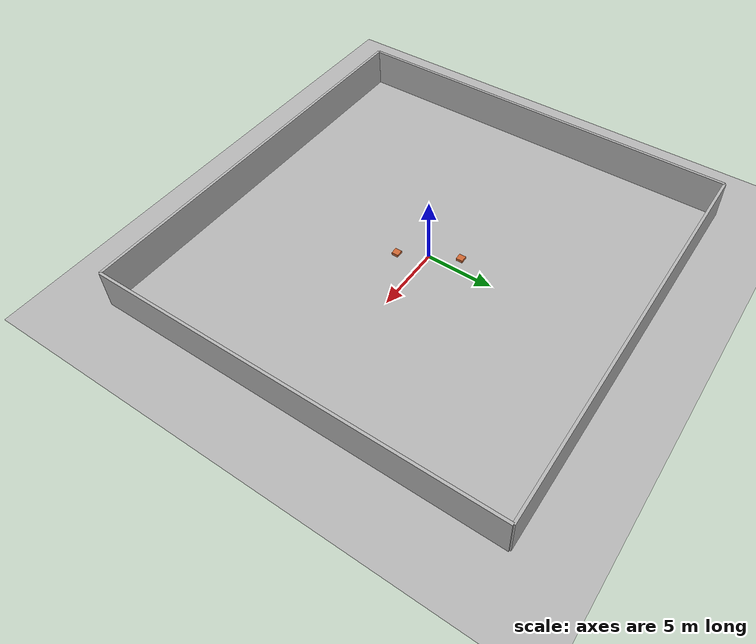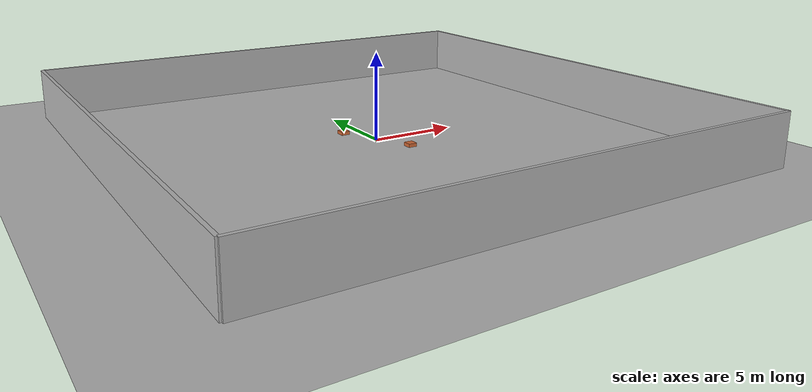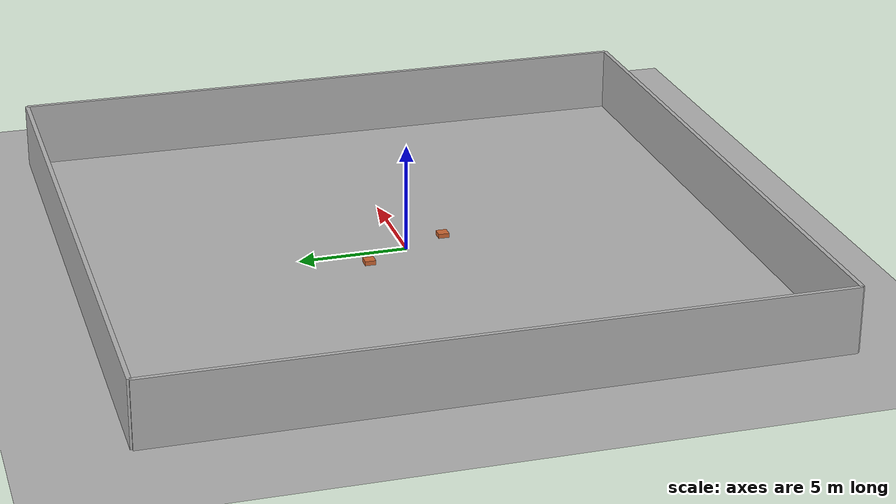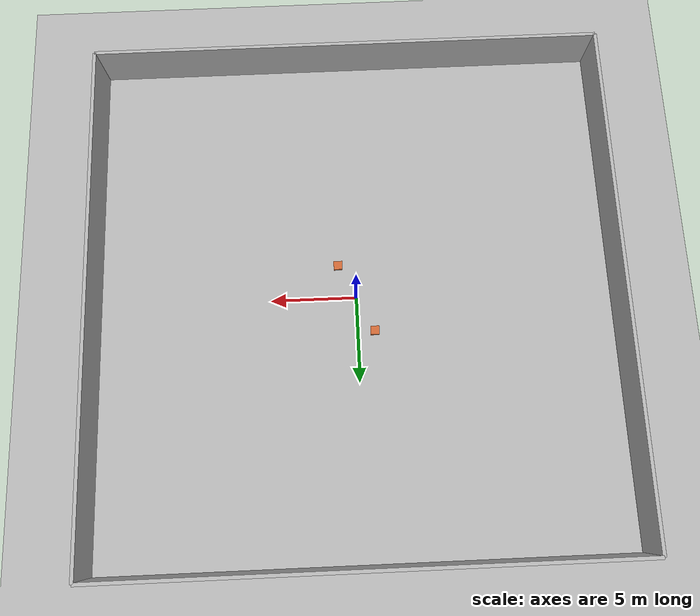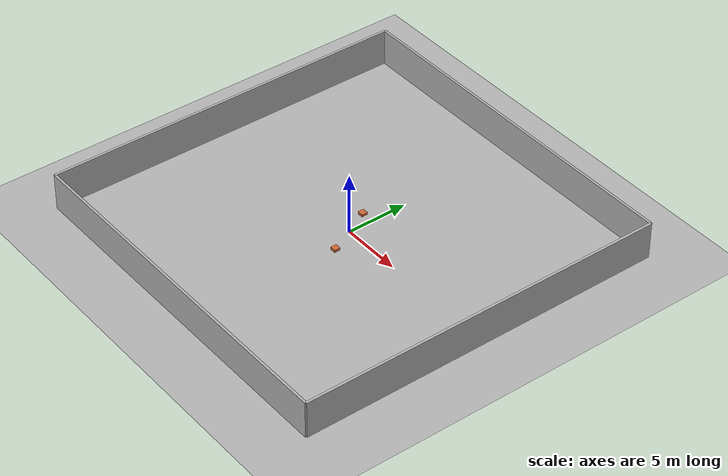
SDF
<?xml version="1.0"?>
<sdf version="1.6">
  <world name="warehouse_stage2">
    <!-- Stage 2: Moderate Clutter - Obstacle Avoidance Training -->
    <!-- 1-2 obstacles, moderate complexity -->

    <!-- ROS state publisher plugin -->
    <plugin name="gazebo_ros_state" filename="libgazebo_ros_state.so">
      <ros>
        <namespace>/</namespace>
      </ros>
    </plugin>

    <!-- Physics -->
    <physics type="ode">
      <max_step_size>0.001</max_step_size>
      <real_time_factor>1</real_time_factor>
      <real_time_update_rate>1000</real_time_update_rate>
    </physics>

    <!-- Light -->
    <light name="sun" type="directional">
      <cast_shadows>true</cast_shadows>
      <pose>0 0 10 0 0 0</pose>
      <diffuse>0.8 0.8 0.8 1</diffuse>
      <specular>0.2 0.2 0.2 1</specular>
      <attenuation>
        <range>1000</range>
        <constant>0.9</constant>
        <linear>0.01</linear>
        <quadratic>0.001</quadratic>
      </attenuation>
      <direction>-0.5 0.1 -0.9</direction>
    </light>

    <!-- FLOOR -->
    <model name="warehouse_floor">
      <static>true</static>
      <pose>0 0 0 0 0 0</pose>
      <link name="floor_link">
        <collision name="floor_collision">
          <geometry>
            <plane>
              <normal>0 0 1</normal>
              <size>50 50</size>
            </plane>
          </geometry>
          <surface>
            <friction>
              <ode>
                <mu>1.0</mu>
                <mu2>1.0</mu2>
              </ode>
            </friction>
          </surface>
        </collision>
        <visual name="floor_visual">
          <geometry>
            <plane>
              <normal>0 0 1</normal>
              <size>50 50</size>
            </plane>
          </geometry>
          <material>
            <ambient>0.55 0.55 0.55 1</ambient>
            <diffuse>0.7 0.7 0.7 1</diffuse>
            <specular>0.12 0.12 0.12 1</specular>
          </material>
        </visual>
      </link>
    </model>

    <!-- WALLS -->
    <model name="warehouse_walls">
      <static>true</static>
      <link name="walls">
        <!-- North -->
        <collision name="north_wall">
          <pose>0 15 1.5 0 0 0</pose>
          <geometry>
            <box><size>30 0.2 3</size></box>
          </geometry>
        </collision>
        <visual name="north_wall_visual">
          <pose>0 15 1.5 0 0 0</pose>
          <geometry>
            <box><size>30 0.2 3</size></box>
          </geometry>
          <material>
            <ambient>0.7 0.7 0.7 1</ambient>
            <diffuse>0.7 0.7 0.7 1</diffuse>
          </material>
        </visual>

        <!-- South -->
        <collision name="south_wall">
          <pose>0 -15 1.5 0 0 0</pose>
          <geometry>
            <box><size>30 0.2 3</size></box>
          </geometry>
        </collision>
        <visual name="south_wall_visual">
          <pose>0 -15 1.5 0 0 0</pose>
          <geometry>
            <box><size>30 0.2 3</size></box>
          </geometry>
          <material>
            <ambient>0.7 0.7 0.7 1</ambient>
            <diffuse>0.7 0.7 0.7 1</diffuse>
          </material>
        </visual>

        <!-- East -->
        <collision name="east_wall">
          <pose>15 0 1.5 0 0 0</pose>
          <geometry>
            <box><size>0.2 30 3</size></box>
          </geometry>
        </collision>
        <visual name="east_wall_visual">
          <pose>15 0 1.5 0 0 0</pose>
          <geometry>
            <box><size>0.2 30 3</size></box>
          </geometry>
          <material>
            <ambient>0.7 0.7 0.7 1</ambient>
            <diffuse>0.7 0.7 0.7 1</diffuse>
          </material>
        </visual>

        <!-- West -->
        <collision name="west_wall">
          <pose>-15 0 1.5 0 0 0</pose>
          <geometry>
            <box><size>0.2 30 3</size></box>
          </geometry>
        </collision>
        <visual name="west_wall_visual">
          <pose>-15 0 1.5 0 0 0</pose>
          <geometry>
            <box><size>0.2 30 3</size></box>
          </geometry>
          <material>
            <ambient>0.7 0.7 0.7 1</ambient>
            <diffuse>0.7 0.7 0.7 1</diffuse>
          </material>
        </visual>
      </link>
    </model>

    <!-- MODERATE OBSTACLES - 1-2 boxes/pallets for obstacle avoidance -->
    <model name="obstacle_box_1">
      <static>true</static>
      <pose>-1.0 2.0 0.1 0 0 0</pose>
      <link name="link">
        <collision name="collision">
          <geometry>
            <box><size>0.5 0.5 0.2</size></box>
          </geometry>
        </collision>
        <visual name="visual">
          <geometry>
            <box><size>0.5 0.5 0.2</size></box>
          </geometry>
          <material>
            <ambient>0.8 0.4 0.2 1</ambient>
            <diffuse>0.8 0.4 0.2 1</diffuse>
          </material>
        </visual>
      </link>
    </model>

    <model name="obstacle_box_2">
      <static>true</static>
      <pose>1.0 -2.0 0.1 0 0 0</pose>
      <link name="link">
        <collision name="collision">
          <geometry>
            <box><size>0.5 0.5 0.2</size></box>
          </geometry>
        </collision>
        <visual name="visual">
          <geometry>
            <box><size>0.5 0.5 0.2</size></box>
          </geometry>
          <material>
            <ambient>0.8 0.4 0.2 1</ambient>
            <diffuse>0.8 0.4 0.2 1</diffuse>
          </material>
        </visual>
      </link>
    </model>

  </world>
</sdf>
